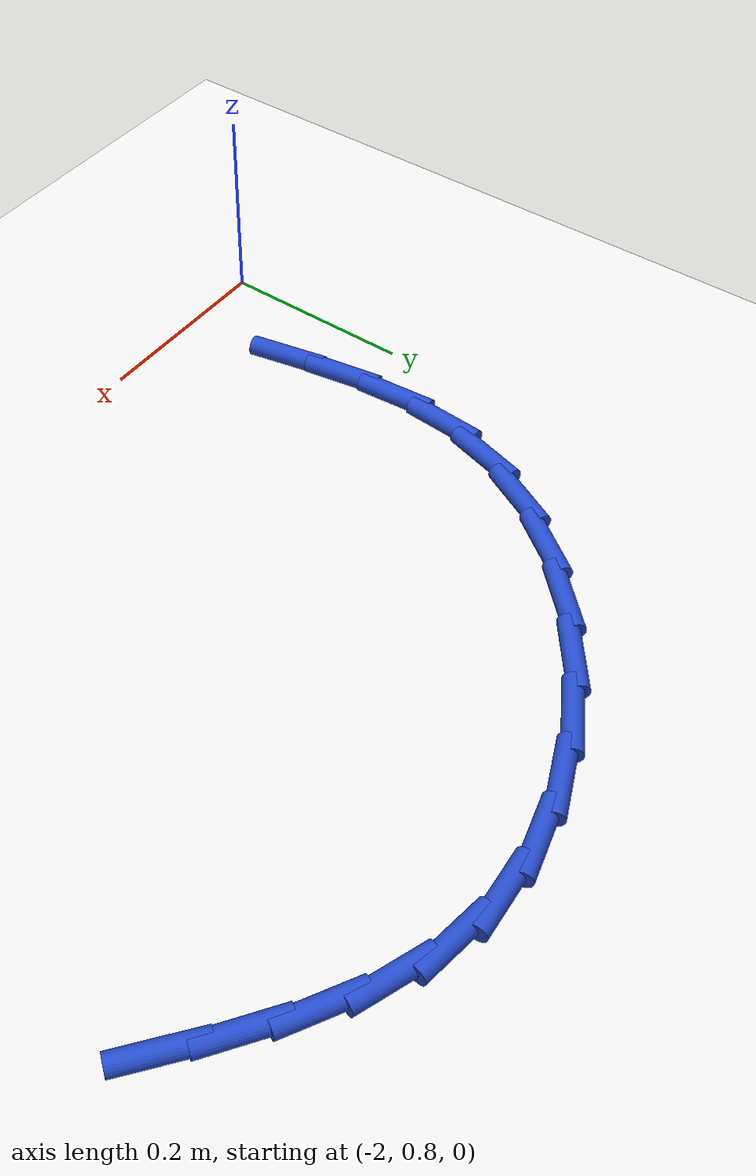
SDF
<sdf version="1.6">
 <world name="default">
  <model name="ground_plane">
   <static>1</static>
   <link name="link">
    <collision name="collision">
     <geometry><plane><normal>0 0 1</normal><size>100 100</size></plane></geometry>
     <surface><friction><ode><mu>100</mu><mu2>50</mu2></ode></friction></surface>
    </collision>
    <visual name="visual">
     <cast_shadows>0</cast_shadows>
     <geometry><plane><normal>0 0 1</normal><size>100 100</size></plane></geometry>
     <material>
      <script><uri>file://media/materials/scripts/gazebo.material</uri><name>Gazebo/WhiteGlow</name></script>
     </material>
    </visual>
   </link>
  </model>
  <model name="line">
   <link name="link_35">
    <pose>-1.2698878217469465 1.308868690419293 0.01 0 1.57 -0.6765031997794814</pose>
    <collision name="collision">
     <geometry><cylinder><radius>0.01</radius><length>0.08</length></cylinder></geometry>
    </collision>
    <visual name="visual">
     <material>
      <script><name>Gazebo/Blue</name><uri>file://media/materials/scripts/gazebo.material</uri></script>
     </material>
     <geometry><cylinder><radius>0.01</radius><length>0.08</length></cylinder></geometry>
    </visual>
   </link>
   <link name="link_36">
    <pose>-1.3168735279793988 1.3465932407609604 0.01 0 1.57 -0.6236737821942042</pose>
    <collision name="collision">
     <geometry><cylinder><radius>0.01</radius><length>0.08</length></cylinder></geometry>
    </collision>
    <visual name="visual">
     <material>
      <script><name>Gazebo/Blue</name><uri>file://media/materials/scripts/gazebo.material</uri></script>
     </material>
     <geometry><cylinder><radius>0.01</radius><length>0.08</length></cylinder></geometry>
    </visual>
   </link>
   <link name="link_37">
    <pose>-1.3645822021847158 1.3809181910761603 0.01 0 1.57 -0.521410464800418</pose>
    <collision name="collision">
     <geometry><cylinder><radius>0.01</radius><length>0.08</length></cylinder></geometry>
    </collision>
    <visual name="visual">
     <material>
      <script><name>Gazebo/Blue</name><uri>file://media/materials/scripts/gazebo.material</uri></script>
     </material>
     <geometry><cylinder><radius>0.01</radius><length>0.08</length></cylinder></geometry>
    </visual>
   </link>
   <link name="link_38">
    <pose>-1.4139139410466726 1.4092561276138162 0.01 0 1.57 -0.3641349132534551</pose>
    <collision name="collision">
     <geometry><cylinder><radius>0.01</radius><length>0.08</length></cylinder></geometry>
    </collision>
    <visual name="visual">
     <material>
      <script><name>Gazebo/Blue</name><uri>file://media/materials/scripts/gazebo.material</uri></script>
     </material>
     <geometry><cylinder><radius>0.01</radius><length>0.08</length></cylinder></geometry>
    </visual>
   </link>
   <link name="link_39">
    <pose>-1.4657688412490466 1.429019636622853 0.01 0 1.57 -0.15548329075879744</pose>
    <collision name="collision">
     <geometry><cylinder><radius>0.01</radius><length>0.08</length></cylinder></geometry>
    </collision>
    <visual name="visual">
     <material>
      <script><name>Gazebo/Blue</name><uri>file://media/materials/scripts/gazebo.material</uri></script>
     </material>
     <geometry><cylinder><radius>0.01</radius><length>0.08</length></cylinder></geometry>
    </visual>
   </link>
   <link name="link_40">
    <pose>-1.5210052051698437 1.4376778519018694 0.01 0 1.57 0.05685876160451693</pose>
    <collision name="collision">
     <geometry><cylinder><radius>0.01</radius><length>0.08</length></cylinder></geometry>
    </collision>
    <visual name="visual">
     <material>
      <script><name>Gazebo/Blue</name><uri>file://media/materials/scripts/gazebo.material</uri></script>
     </material>
     <geometry><cylinder><radius>0.01</radius><length>0.08</length></cylinder></geometry>
    </visual>
   </link>
   <link name="link_41">
    <pose>-1.5792525831243873 1.4343624044969927 0.01 0 1.57 0.23534725048124602</pose>
    <collision name="collision">
     <geometry><cylinder><radius>0.01</radius><length>0.08</length></cylinder></geometry>
    </collision>
    <visual name="visual">
     <material>
      <script><name>Gazebo/Blue</name><uri>file://media/materials/scripts/gazebo.material</uri></script>
     </material>
     <geometry><cylinder><radius>0.01</radius><length>0.08</length></cylinder></geometry>
    </visual>
   </link>
   <link name="link_42">
    <pose>-1.6387417675344873 1.4200974399969826 0.01 0 1.57 0.38828807610979277</pose>
    <collision name="collision">
     <geometry><cylinder><radius>0.01</radius><length>0.08</length></cylinder></geometry>
    </collision>
    <visual name="visual">
     <material>
      <script><name>Gazebo/Blue</name><uri>file://media/materials/scripts/gazebo.material</uri></script>
     </material>
     <geometry><cylinder><radius>0.01</radius><length>0.08</length></cylinder></geometry>
    </visual>
   </link>
   <link name="link_43">
    <pose>-1.6976275762655018 1.3960098973000252 0.01 0 1.57 0.5262408574784457</pose>
    <collision name="collision">
     <geometry><cylinder><radius>0.01</radius><length>0.08</length></cylinder></geometry>
    </collision>
    <visual name="visual">
     <material>
      <script><name>Gazebo/Blue</name><uri>file://media/materials/scripts/gazebo.material</uri></script>
     </material>
     <geometry><cylinder><radius>0.01</radius><length>0.08</length></cylinder></geometry>
    </visual>
   </link>
   <link name="link_44">
    <pose>-1.754064827182787 1.3632267153043058 0.01 0 1.57 0.6585987127388626</pose>
    <collision name="collision">
     <geometry><cylinder><radius>0.01</radius><length>0.08</length></cylinder></geometry>
    </collision>
    <visual name="visual">
     <material>
      <script><name>Gazebo/Blue</name><uri>file://media/materials/scripts/gazebo.material</uri></script>
     </material>
     <geometry><cylinder><radius>0.01</radius><length>0.08</length></cylinder></geometry>
    </visual>
   </link>
   <link name="link_45">
    <pose>-1.8062083381516991 1.3228748329080111 0.01 0 1.57 0.7939008683935288</pose>
    <collision name="collision">
     <geometry><cylinder><radius>0.01</radius><length>0.08</length></cylinder></geometry>
    </collision>
    <visual name="visual">
     <material>
      <script><name>Gazebo/Blue</name><uri>file://media/materials/scripts/gazebo.material</uri></script>
     </material>
     <geometry><cylinder><radius>0.01</radius><length>0.08</length></cylinder></geometry>
    </visual>
   </link>
   <link name="link_46">
    <pose>-1.8522129270375958 1.2760811890093262 0.01 0 1.57 0.9404526677247441</pose>
    <collision name="collision">
     <geometry><cylinder><radius>0.01</radius><length>0.08</length></cylinder></geometry>
    </collision>
    <visual name="visual">
     <material>
      <script><name>Gazebo/Blue</name><uri>file://media/materials/scripts/gazebo.material</uri></script>
     </material>
     <geometry><cylinder><radius>0.01</radius><length>0.08</length></cylinder></geometry>
    </visual>
   </link>
   <link name="link_47">
    <pose>-1.8902334117058324 1.2239727225064374 0.01 0 1.57 1.106537522813545</pose>
    <collision name="collision">
     <geometry><cylinder><radius>0.01</radius><length>0.08</length></cylinder></geometry>
    </collision>
    <visual name="visual">
     <material>
      <script><name>Gazebo/Blue</name><uri>file://media/materials/scripts/gazebo.material</uri></script>
     </material>
     <geometry><cylinder><radius>0.01</radius><length>0.08</length></cylinder></geometry>
    </visual>
   </link>
   <link name="link_48">
    <pose>-1.918424610021767 1.1676763722975303 0.01 0 1.57 1.2993235630250008</pose>
    <collision name="collision">
     <geometry><cylinder><radius>0.01</radius><length>0.08</length></cylinder></geometry>
    </collision>
    <visual name="visual">
     <material>
      <script><name>Gazebo/Blue</name><uri>file://media/materials/scripts/gazebo.material</uri></script>
     </material>
     <geometry><cylinder><radius>0.01</radius><length>0.08</length></cylinder></geometry>
    </visual>
   </link>
   <link name="link_49">
    <pose>-1.9349464383682597 1.1083188601990959 0.01 0 1.57 1.4987234341206643</pose>
    <collision name="collision">
     <geometry><cylinder><radius>0.01</radius><length>0.08</length></cylinder></geometry>
    </collision>
    <visual name="visual">
     <material>
      <script><name>Gazebo/Blue</name><uri>file://media/materials/scripts/gazebo.material</uri></script>
     </material>
     <geometry><cylinder><radius>0.01</radius><length>0.08</length></cylinder></geometry>
    </visual>
   </link>
   <link name="link_50">
    <pose>-1.9393759477435166 1.0469665700990698 0.01 0 1.57 -1.4950040653635428</pose>
    <collision name="collision">
     <geometry><cylinder><radius>0.01</radius><length>0.08</length></cylinder></geometry>
    </collision>
    <visual name="visual">
     <material>
      <script><name>Gazebo/Blue</name><uri>file://media/materials/scripts/gazebo.material</uri></script>
     </material>
     <geometry><cylinder><radius>0.01</radius><length>0.08</length></cylinder></geometry>
    </visual>
   </link>
   <link name="link_51">
    <pose>-1.9346356775702964 0.9845434436365379 0.01 0 1.57 -1.4045103430950683</pose>
    <collision name="collision">
     <geometry><cylinder><radius>0.01</radius><length>0.08</length></cylinder></geometry>
    </collision>
    <visual name="visual">
     <material>
      <script><name>Gazebo/Blue</name><uri>file://media/materials/scripts/gazebo.material</uri></script>
     </material>
     <geometry><cylinder><radius>0.01</radius><length>0.08</length></cylinder></geometry>
    </visual>
   </link>
   <link name="link_52">
    <pose>-1.9241307403539032 0.9219528757362057 0.01 0 1.57 -1.36574007673455</pose>
    <collision name="collision">
     <geometry><cylinder><radius>0.01</radius><length>0.08</length></cylinder></geometry>
    </collision>
    <visual name="visual">
     <material>
      <script><name>Gazebo/Blue</name><uri>file://media/materials/scripts/gazebo.material</uri></script>
     </material>
     <geometry><cylinder><radius>0.01</radius><length>0.08</length></cylinder></geometry>
    </visual>
   </link>
  </model>
 </world>
</sdf>
